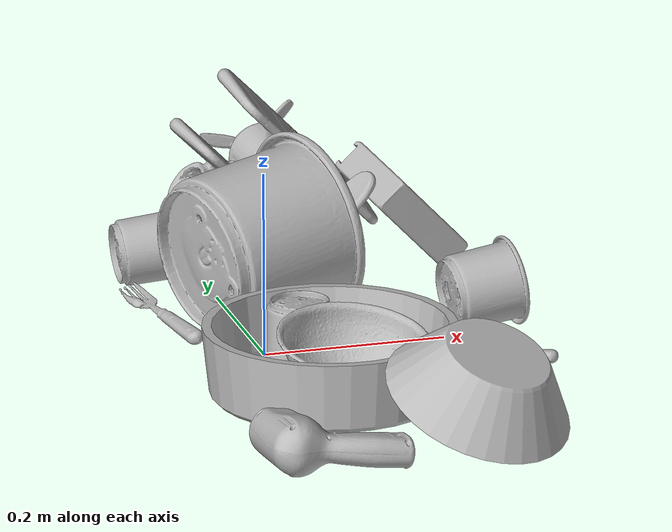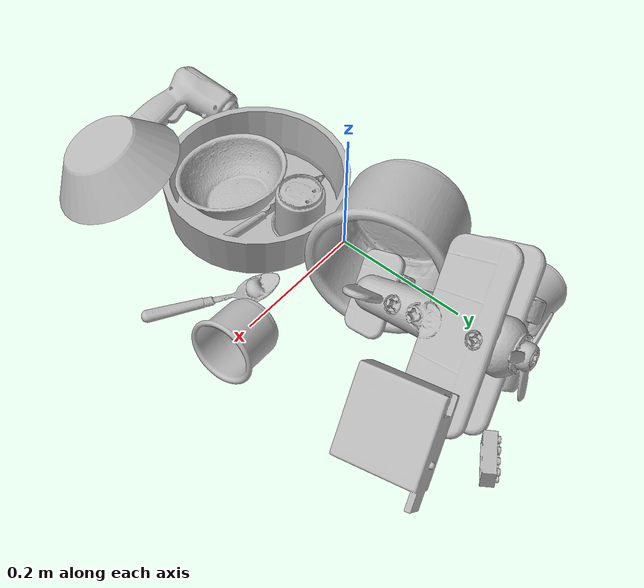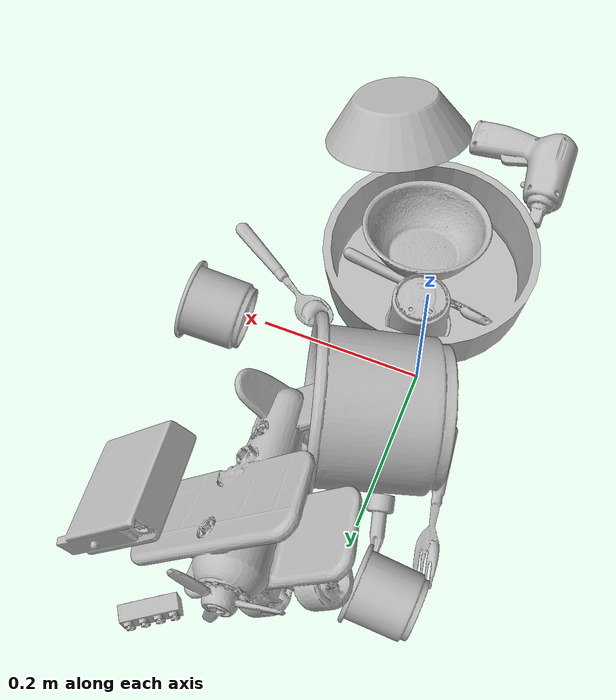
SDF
<sdf version="1.4">
  <world name="default">
    <light name="light1" type="point">
      <pose>0 0 1 0 0 0</pose>
      <diffuse>3 3 3 1</diffuse>
      <specular>3 3 3 1</specular>
    </light>
    <light name="light2" type="point">
      <pose>0 0.5 2 0 0 0</pose>
      <diffuse>1 1 1 1</diffuse>
      <specular>1 1 1 1</specular>
    </light>
    <light name="light3" type="point">
      <pose>0 0.5 2 0 0 0</pose>
      <diffuse>3 3 3 1</diffuse>
      <specular>3 3 3 1</specular>
    </light>
    <scene>
      <ambient>0.7 0.7 0.7</ambient>
    </scene>
    <model name="plate1">
      <link name="link_plate1">
        <collision name="default">
          <geometry>
            <mesh>
              <uri>model://pan_tefal/collision_meshes/collision.obj</uri>
              <scale>1.0 1.0 1.0</scale>
            </mesh>
          </geometry>
          <surface>
            <friction>
              <ode>
                <mu>0.5</mu>
                <mu2>0.5</mu2>
              </ode>
            </friction>
          <contact>
        <ode>
            <max_vel>0</max_vel>
            <min_depth>0.0001</min_depth>
            <kp>1e8</kp>
        </ode>
    </contact></surface>
        </collision>
        <visual name="default">
          <geometry>
            <mesh>
              <uri>model://pan_tefal/visual_meshes/visual.dae</uri>
              <scale>1.0 1.0 1.0</scale>
            </mesh>
          </geometry>
        </visual>
        <inertial>
          <mass>1.2414644956588745</mass>
          <pose>-0.0001800298341549933 3.278589065303095e-05 -0.00851493515074253 0.0008190165640447202 -0.0003301348973125405 -0.33185319573483557</pose>
          <inertia>
            <ixx>0.00856977</ixx>
            <iyy>0.008625018</iyy>
            <izz>0.015775295</izz>
            <ixy>0</ixy>
            <ixz>0</ixz>
            <iyz>0</iyz>
          </inertia>
        </inertial>
      </link>
      <pose>0.03351879119873047 -0.1343560665845871 0.038050003349781036 6.961739902214845e-08 1.028346743073239e-07 1.6594892427542853</pose>
    </model>
    <model name="cup1">
      <link name="link_cup1">
        <collision name="default">
          <geometry>
            <mesh>
              <uri>model://j_cups/collision_meshes/collision.obj</uri>
              <scale>2.0 2.0 2.0</scale>
            </mesh>
          </geometry>
          <surface>
            <friction>
              <ode>
                <mu>0.5</mu>
                <mu2>0.5</mu2>
              </ode>
            </friction>
          <contact>
        <ode>
            <max_vel>0</max_vel>
            <min_depth>0.0001</min_depth>
            <kp>1e8</kp>
        </ode>
    </contact></surface>
        </collision>
        <visual name="default">
          <geometry>
            <mesh>
              <uri>model://j_cups/visual_meshes/visual.dae</uri>
              <scale>2.0 2.0 2.0</scale>
            </mesh>
          </geometry>
        </visual>
        <inertial>
          <mass>0.42814481258392334</mass>
          <pose>0.0012329709716141224 0.0010797895956784487 -0.002695801667869091 0.030303634199985552 0.037580068488308346 0.43868666904956827</pose>
          <inertia>
            <ixx>0.0025146077</ixx>
            <iyy>0.0025407567</iyy>
            <izz>0.0028988216</izz>
            <ixy>0</ixy>
            <ixz>0</ixz>
            <iyz>0</iyz>
          </inertia>
        </inertial>
      </link>
      <pose>0.018086019903421402 0.09992655366659164 0.0945536196231842 -1.2633940374397927 1.1481549188697326 -0.9622309805456063</pose>
    </model>
    <model name="silverware1">
      <link name="link_silverware1">
        <collision name="default">
          <geometry>
            <mesh>
              <uri>model://fork/collision_meshes/collision.obj</uri>
              <scale>1.0 1.0 1.0</scale>
            </mesh>
          </geometry>
          <surface>
            <friction>
              <ode>
                <mu>0.5</mu>
                <mu2>0.5</mu2>
              </ode>
            </friction>
          <contact>
        <ode>
            <max_vel>0</max_vel>
            <min_depth>0.0001</min_depth>
            <kp>1e8</kp>
        </ode>
    </contact></surface>
        </collision>
        <visual name="default">
          <geometry>
            <mesh>
              <uri>model://fork/visual_meshes/visual.dae</uri>
              <scale>1.0 1.0 1.0</scale>
            </mesh>
          </geometry>
        </visual>
        <inertial>
          <mass>0.013809523545205593</mass>
          <pose>-0.029570044949650764 0.0004658822435885668 0.00032188615296036005 -0.013551743215227608 -0.010977837587661193 0.014453899243146438</pose>
          <inertia>
            <ixx>4.84102e-07</ixx>
            <iyy>3.6052697e-05</iyy>
            <izz>3.6269223e-05</izz>
            <ixy>0</ixy>
            <ixz>0</ixz>
            <iyz>0</iyz>
          </inertia>
        </inertial>
      </link>
      <pose>-0.07467395812273026 0.1441355049610138 0.005677998997271061 -0.17515679720992108 0.02555631863831522 1.7222140523751495</pose>
    </model>
    <model name="silverware2">
      <link name="link_silverware2">
        <collision name="default">
          <geometry>
            <mesh>
              <uri>model://knife/collision_meshes/collision.obj</uri>
              <scale>1.0 1.0 1.0</scale>
            </mesh>
          </geometry>
          <surface>
            <friction>
              <ode>
                <mu>0.5</mu>
                <mu2>0.5</mu2>
              </ode>
            </friction>
          <contact>
        <ode>
            <max_vel>0</max_vel>
            <min_depth>0.0001</min_depth>
            <kp>1e8</kp>
        </ode>
    </contact></surface>
        </collision>
        <visual name="default">
          <geometry>
            <mesh>
              <uri>model://knife/visual_meshes/visual.dae</uri>
              <scale>1.0 1.0 1.0</scale>
            </mesh>
          </geometry>
        </visual>
        <inertial>
          <mass>0.021972408518195152</mass>
          <pose>-0.023785250261425972 0.0015275123296305537 5.0620161346159875e-05 0.07305788583029697 0.01724841890740089 -0.007409824444555058</pose>
          <inertia>
            <ixx>6.2366604e-07</ixx>
            <iyy>8.441444e-05</iyy>
            <izz>8.46153e-05</izz>
            <ixy>0</ixy>
            <ixz>0</ixz>
            <iyz>0</iyz>
          </inertia>
        </inertial>
      </link>
      <pose>0.0373329296708107 -0.10907493531703949 0.01701747626066208 -1.529059421057232 0.008204552489176186 3.0028001842945926</pose>
    </model>
    <model name="silverware3">
      <link name="link_silverware3">
        <collision name="default">
          <geometry>
            <mesh>
              <uri>model://spoon/collision_meshes/collision.obj</uri>
              <scale>1.0 1.0 1.0</scale>
            </mesh>
          </geometry>
          <surface>
            <friction>
              <ode>
                <mu>0.5</mu>
                <mu2>0.5</mu2>
              </ode>
            </friction>
          <contact>
        <ode>
            <max_vel>0</max_vel>
            <min_depth>0.0001</min_depth>
            <kp>1e8</kp>
        </ode>
    </contact></surface>
        </collision>
        <visual name="default">
          <geometry>
            <mesh>
              <uri>model://spoon/visual_meshes/visual.dae</uri>
              <scale>1.0 1.0 1.0</scale>
            </mesh>
          </geometry>
        </visual>
        <inertial>
          <mass>0.026694269850850105</mass>
          <pose>-0.005526325199753046 -0.0016034168656915426 -0.0007271653739735484 0.035216710718480135 -0.03906584501417282 0.00615060951780049</pose>
          <inertia>
            <ixx>1.484779e-06</ixx>
            <iyy>0.000101570804</iyy>
            <izz>0.000102303035</izz>
            <ixy>0</ixy>
            <ixz>0</ixz>
            <iyz>0</iyz>
          </inertia>
        </inertial>
      </link>
      <pose>0.2027488797903061 -0.0674469918012619 0.008385264314711094 0.006731752170821652 0.026892974863261105 2.6025119523929066</pose>
    </model>
    <model name="cup3">
      <link name="link_cup3">
        <collision name="default">
          <geometry>
            <mesh>
              <uri>model://f_cups/collision_meshes/collision.obj</uri>
              <scale>1.0 1.0 1.0</scale>
            </mesh>
          </geometry>
          <surface>
            <friction>
              <ode>
                <mu>0.5</mu>
                <mu2>0.5</mu2>
              </ode>
            </friction>
          <contact>
        <ode>
            <max_vel>0</max_vel>
            <min_depth>0.0001</min_depth>
            <kp>1e8</kp>
        </ode>
    </contact></surface>
        </collision>
        <visual name="default">
          <geometry>
            <mesh>
              <uri>model://f_cups/visual_meshes/visual.dae</uri>
              <scale>1.0 1.0 1.0</scale>
            </mesh>
          </geometry>
        </visual>
        <inertial>
          <mass>0.09255705773830414</mass>
          <pose>-0.0031714672222733498 -0.0006240062648430467 -0.0036555363330990076 0.7862294428046025 -0.26079256257201844 -0.18237393521905715</pose>
          <inertia>
            <ixx>8.700612e-05</ixx>
            <iyy>9.127041e-05</iyy>
            <izz>9.501506e-05</izz>
            <ixy>0</ixy>
            <ixz>0</ixz>
            <iyz>0</iyz>
          </inertia>
        </inertial>
      </link>
      <pose>0.021298449486494064 -0.06352707743644714 0.04412511736154556 3.135816924489132 -0.0005686257823396535 0.9081426393912101</pose>
    </model>
    <model name="cup4">
      <link name="link_cup4">
        <collision name="default">
          <geometry>
            <mesh>
              <uri>model://g_cups/collision_meshes/collision.obj</uri>
              <scale>1.0 1.0 1.0</scale>
            </mesh>
          </geometry>
          <surface>
            <friction>
              <ode>
                <mu>0.5</mu>
                <mu2>0.5</mu2>
              </ode>
            </friction>
          <contact>
        <ode>
            <max_vel>0</max_vel>
            <min_depth>0.0001</min_depth>
            <kp>1e8</kp>
        </ode>
    </contact></surface>
        </collision>
        <visual name="default">
          <geometry>
            <mesh>
              <uri>model://g_cups/visual_meshes/visual.dae</uri>
              <scale>1.0 1.0 1.0</scale>
            </mesh>
          </geometry>
        </visual>
        <inertial>
          <mass>0.09045539051294327</mass>
          <pose>-0.0007946272380650043 -4.206356970826164e-05 -0.0021329366136342287 -0.21382427470227655 -0.31410603394020525 0.31120189460551634</pose>
          <inertia>
            <ixx>0.000105581705</ixx>
            <iyy>0.000105222556</iyy>
            <izz>0.000109364446</izz>
            <ixy>0</ixy>
            <ixz>0</ixz>
            <iyz>0</iyz>
          </inertia>
        </inertial>
      </link>
      <pose>-0.06007419154047966 0.27137520909309387 0.0400606170296669 1.2219059211100545 -1.2826420113060564 1.8771333964551482</pose>
    </model>
    <model name="cup5">
      <link name="link_cup5">
        <collision name="default">
          <geometry>
            <mesh>
              <uri>model://i_cups/collision_meshes/collision.obj</uri>
              <scale>1.0 1.0 1.0</scale>
            </mesh>
          </geometry>
          <surface>
            <friction>
              <ode>
                <mu>0.5</mu>
                <mu2>0.5</mu2>
              </ode>
            </friction>
          <contact>
        <ode>
            <max_vel>0</max_vel>
            <min_depth>0.0001</min_depth>
            <kp>1e8</kp>
        </ode>
    </contact></surface>
        </collision>
        <visual name="default">
          <geometry>
            <mesh>
              <uri>model://i_cups/visual_meshes/visual.dae</uri>
              <scale>1.0 1.0 1.0</scale>
            </mesh>
          </geometry>
        </visual>
        <inertial>
          <mass>0.0815454050898552</mass>
          <pose>0.0001123997790273279 0.00016797320859041065 -0.0008579009445384145 -0.02898318353055437 -0.03987301779891007 -0.3459082462056558</pose>
          <inertia>
            <ixx>0.0001129008</ixx>
            <iyy>0.000113895556</iyy>
            <izz>0.00012618494</izz>
            <ixy>0</ixy>
            <ixz>0</ixz>
            <iyz>0</iyz>
          </inertia>
        </inertial>
      </link>
      <pose>0.24877284467220306 0.024182582274079323 0.044869907200336456 1.4162341324275984 0.5733088172079094 1.548388108735257</pose>
    </model>
    <model name="bowl1">
      <link name="link_bowl1">
        <collision name="default">
          <geometry>
            <mesh>
              <uri>model://bowl/collision_meshes/collision.obj</uri>
              <scale>1.0 1.0 1.0</scale>
            </mesh>
          </geometry>
          <surface>
            <friction>
              <ode>
                <mu>0.5</mu>
                <mu2>0.5</mu2>
              </ode>
            </friction>
          <contact>
        <ode>
            <max_vel>0</max_vel>
            <min_depth>0.0001</min_depth>
            <kp>1e8</kp>
        </ode>
    </contact></surface>
        </collision>
        <visual name="default">
          <geometry>
            <mesh>
              <uri>model://bowl/visual_meshes/visual.dae</uri>
              <scale>1.0 1.0 1.0</scale>
            </mesh>
          </geometry>
        </visual>
        <inertial>
          <mass>0.1349102407693863</mass>
          <pose>0.00020445192058105022 -0.0010302069131284952 -0.0008042648551054299 -0.01576408127006171 0.01454679335072616 0.7140405111038781</pose>
          <inertia>
            <ixx>0.00030989948</ixx>
            <iyy>0.00030297515</iyy>
            <izz>0.0005213576</izz>
            <ixy>0</ixy>
            <ixz>0</ixz>
            <iyz>0</iyz>
          </inertia>
        </inertial>
      </link>
      <pose>0.048740312457084656 -0.1631447672843933 0.04331924021244049 0.19680045549665792 0.02195696021821063 0.16549122803502161</pose>
    </model>
    <model name="bowl2">
      <link name="link_bowl2">
        <collision name="default">
          <geometry>
            <mesh>
              <uri>model://bowl_a/collision_meshes/collision.obj</uri>
              <scale>1.0 1.0 1.0</scale>
            </mesh>
          </geometry>
          <surface>
            <friction>
              <ode>
                <mu>0.5</mu>
                <mu2>0.5</mu2>
              </ode>
            </friction>
          <contact>
        <ode>
            <max_vel>0</max_vel>
            <min_depth>0.0001</min_depth>
            <kp>1e8</kp>
        </ode>
    </contact></surface>
        </collision>
        <visual name="default">
          <geometry>
            <mesh>
              <uri>model://bowl_a/visual_meshes/visual.dae</uri>
              <scale>1.0 1.0 1.0</scale>
            </mesh>
          </geometry>
        </visual>
        <inertial>
          <mass>0.4816342294216156</mass>
          <pose>0.000278677063761279 4.73155923828017e-05 -0.0013765296898782253 -0.0009805427744981278 -0.0010938171301827632 -0.19123023792191385</pose>
          <inertia>
            <ixx>0.0013712347</ixx>
            <iyy>0.0013796532</iyy>
            <izz>0.0024387941</izz>
            <ixy>0</ixy>
            <ixz>0</ixz>
            <iyz>0</iyz>
          </inertia>
        </inertial>
      </link>
      <pose>0.14442697167396545 -0.3154790699481964 0.0687466412782669 2.9282855412518156 -0.37943584111156975 2.672291234580557</pose>
    </model>
    <model name="toy1">
      <link name="link_toy1">
        <collision name="default">
          <geometry>
            <mesh>
              <uri>model://a_toy_airplane/collision_meshes/collision.obj</uri>
              <scale>1.0 1.0 1.0</scale>
            </mesh>
          </geometry>
          <surface>
            <friction>
              <ode>
                <mu>0.5</mu>
                <mu2>0.5</mu2>
              </ode>
            </friction>
          <contact>
        <ode>
            <max_vel>0</max_vel>
            <min_depth>0.0001</min_depth>
            <kp>1e8</kp>
        </ode>
    </contact></surface>
        </collision>
        <visual name="default">
          <geometry>
            <mesh>
              <uri>model://a_toy_airplane/visual_meshes/visual.dae</uri>
              <scale>1.0 1.0 1.0</scale>
            </mesh>
          </geometry>
        </visual>
        <inertial>
          <mass>1.6936675310134888</mass>
          <pose>0.025165095925331116 -0.0037073225248605013 -0.0011962444987148046 -0.01201699252327453 -0.146634996228158 0.004149091382990828</pose>
          <inertia>
            <ixx>0.0061505185</ixx>
            <iyy>0.008962553</iyy>
            <izz>0.010494047</izz>
            <ixy>0</ixy>
            <ixz>0</ixz>
            <iyz>0</iyz>
          </inertia>
        </inertial>
      </link>
      <pose>0.09166259318590164 0.23388482630252838 0.10883007943630219 0.7742510250620609 -0.008318554960157558 1.8113729256913413</pose>
    </model>
    <model name="toy2">
      <link name="link_toy2">
        <collision name="default">
          <geometry>
            <mesh>
              <uri>model://c_lego_duplo/collision_meshes/collision.obj</uri>
              <scale>1.0 1.0 1.0</scale>
            </mesh>
          </geometry>
          <surface>
            <friction>
              <ode>
                <mu>0.5</mu>
                <mu2>0.5</mu2>
              </ode>
            </friction>
          <contact>
        <ode>
            <max_vel>0</max_vel>
            <min_depth>0.0001</min_depth>
            <kp>1e8</kp>
        </ode>
    </contact></surface>
        </collision>
        <visual name="default">
          <geometry>
            <mesh>
              <uri>model://c_lego_duplo/visual_meshes/visual.dae</uri>
              <scale>1.0 1.0 1.0</scale>
            </mesh>
          </geometry>
        </visual>
        <inertial>
          <mass>0.01636073924601078</mass>
          <pose>0.000316459103487432 0.0001946457487065345 0.001045315177179873 -0.01152079658800189 0.005900071110555828 0.03110036538654021</pose>
          <inertia>
            <ixx>6.295917e-06</ixx>
            <iyy>2.0111436e-06</iyy>
            <izz>7.357428e-06</izz>
            <ixy>0</ixy>
            <ixz>0</ixz>
            <iyz>0</iyz>
          </inertia>
        </inertial>
      </link>
      <pose>0.16820155084133148 0.37408530712127686 0.016251694411039352 2.077274566897912 -1.544736099349628 -3.043978673603056</pose>
    </model>
    <model name="toy3">
      <link name="link_toy3">
        <collision name="default">
          <geometry>
            <mesh>
              <uri>model://nine_hole_peg_test/collision_meshes/collision.obj</uri>
              <scale>1.0 1.0 1.0</scale>
            </mesh>
          </geometry>
          <surface>
            <friction>
              <ode>
                <mu>0.5</mu>
                <mu2>0.5</mu2>
              </ode>
            </friction>
          <contact>
        <ode>
            <max_vel>0</max_vel>
            <min_depth>0.0001</min_depth>
            <kp>1e8</kp>
        </ode>
    </contact></surface>
        </collision>
        <visual name="default">
          <geometry>
            <mesh>
              <uri>model://nine_hole_peg_test/visual_meshes/visual.dae</uri>
              <scale>1.0 1.0 1.0</scale>
            </mesh>
          </geometry>
        </visual>
        <inertial>
          <mass>0.9464474320411682</mass>
          <pose>-0.004617386497557163 -0.009647613391280174 2.646068787726108e-05 -0.0014666793204268175 0.0007194166079670136 -0.6342420609245715</pose>
          <inertia>
            <ixx>0.0014799263</ixx>
            <iyy>0.0013817915</iyy>
            <izz>0.002593267</izz>
            <ixy>0</ixy>
            <ixz>0</ixz>
            <iyz>0</iyz>
          </inertia>
        </inertial>
      </link>
      <pose>0.24204306304454803 0.27734822034835815 0.05889139696955681 -2.34612130333016 -0.1279913678561517 1.699109913220328</pose>
    </model>
    <model name="toy4">
      <link name="link_toy4">
        <collision name="default">
          <geometry>
            <mesh>
              <uri>model://d_toy_airplane/collision_meshes/collision.obj</uri>
              <scale>1.0 1.0 1.0</scale>
            </mesh>
          </geometry>
          <surface>
            <friction>
              <ode>
                <mu>0.5</mu>
                <mu2>0.5</mu2>
              </ode>
            </friction>
          <contact>
        <ode>
            <max_vel>0</max_vel>
            <min_depth>0.0001</min_depth>
            <kp>1e8</kp>
        </ode>
    </contact></surface>
        </collision>
        <visual name="default">
          <geometry>
            <mesh>
              <uri>model://d_toy_airplane/visual_meshes/visual.dae</uri>
              <scale>1.0 1.0 1.0</scale>
            </mesh>
          </geometry>
        </visual>
        <inertial>
          <mass>0.021776849403977394</mass>
          <pose>9.410295024281368e-05 -5.809321373817511e-05 -0.011728097684681416 0.0002661671660100631 0.004679022103859929 0.519291232465637</pose>
          <inertia>
            <ixx>6.5282748e-06</ixx>
            <iyy>6.5331997e-06</iyy>
            <izz>1.9709291e-06</izz>
            <ixy>0</ixy>
            <ixz>0</ixz>
            <iyz>0</iyz>
          </inertia>
        </inertial>
      </link>
      <pose>-0.02324671857059002 0.19309943914413452 0.011044276878237724 -2.419386248121753 -1.2639061506962175 1.0728572142592854</pose>
    </model>
    <model name="toy5">
      <link name="link_toy5">
        <collision name="default">
          <geometry>
            <mesh>
              <uri>model://b_toy_airplane/collision_meshes/collision.obj</uri>
              <scale>1.0 1.0 1.0</scale>
            </mesh>
          </geometry>
          <surface>
            <friction>
              <ode>
                <mu>0.5</mu>
                <mu2>0.5</mu2>
              </ode>
            </friction>
          <contact>
        <ode>
            <max_vel>0</max_vel>
            <min_depth>0.0001</min_depth>
            <kp>1e8</kp>
        </ode>
    </contact></surface>
        </collision>
        <visual name="default">
          <geometry>
            <mesh>
              <uri>model://b_toy_airplane/visual_meshes/visual.dae</uri>
              <scale>1.0 1.0 1.0</scale>
            </mesh>
          </geometry>
        </visual>
        <inertial>
          <mass>0.25237053632736206</mass>
          <pose>0.00508136348798871 0.004015584476292133 0.00954306498169899 -0.04001808288480986 -0.0402218063825515 -0.5601503558886168</pose>
          <inertia>
            <ixx>0.00046853055</ixx>
            <iyy>0.00018727628</iyy>
            <izz>0.0005828988</izz>
            <ixy>0</ixy>
            <ixz>0</ixz>
            <iyz>0</iyz>
          </inertia>
        </inertial>
      </link>
      <pose>-0.040816374123096466 -0.34540849924087524 0.016977880150079727 0.1848765221323081 0.11349929091692311 1.6088370633992743</pose>
    </model>
  <physics type="ode">
      <max_contacts>50</max_contacts>
      <ode>
        <solver>
          <type>quick</type>
          <iters>75</iters>
        </solver>
        <constraints>
          <contact_max_correcting_vel>0</contact_max_correcting_vel>
          <contact_surface_layer>0</contact_surface_layer>
        </constraints>
      </ode>
    </physics></world>
</sdf>
